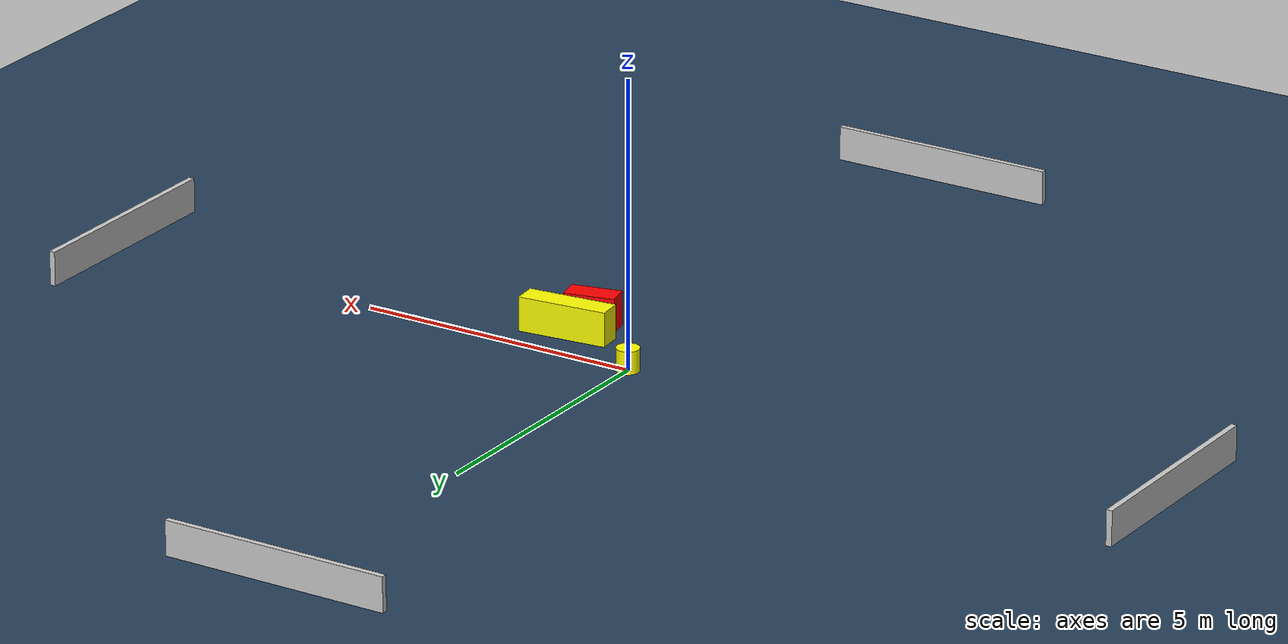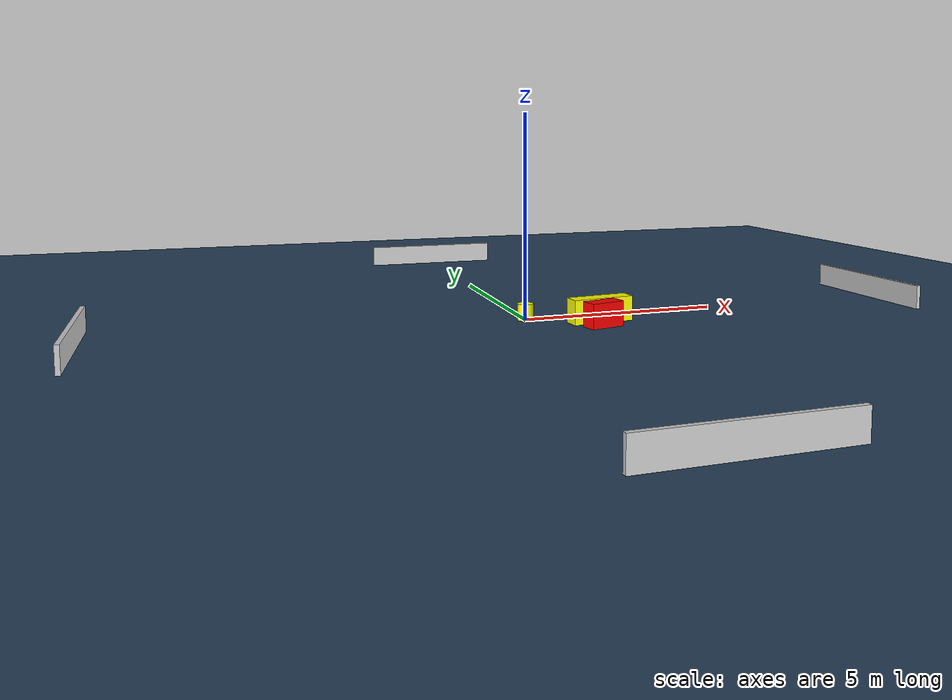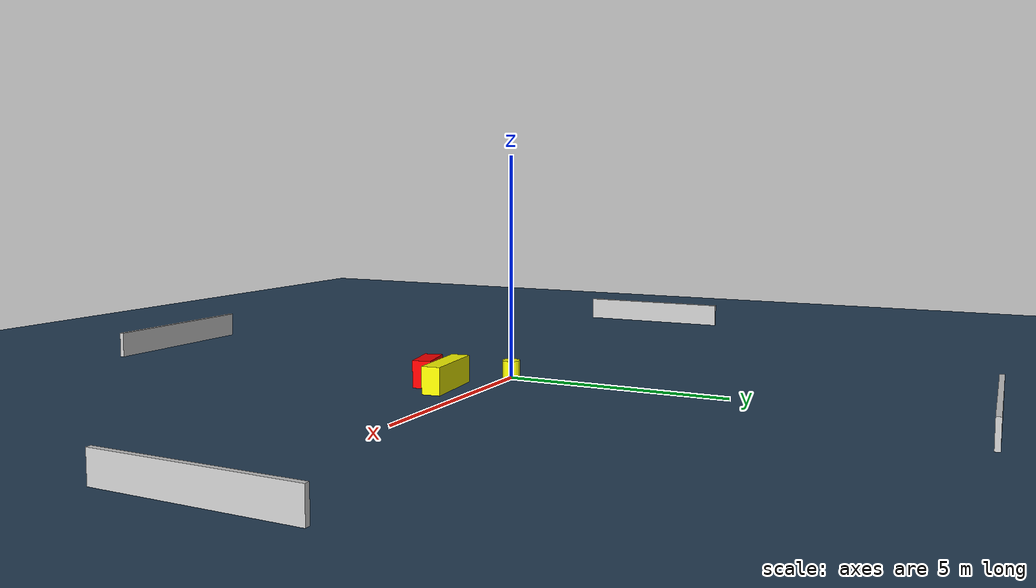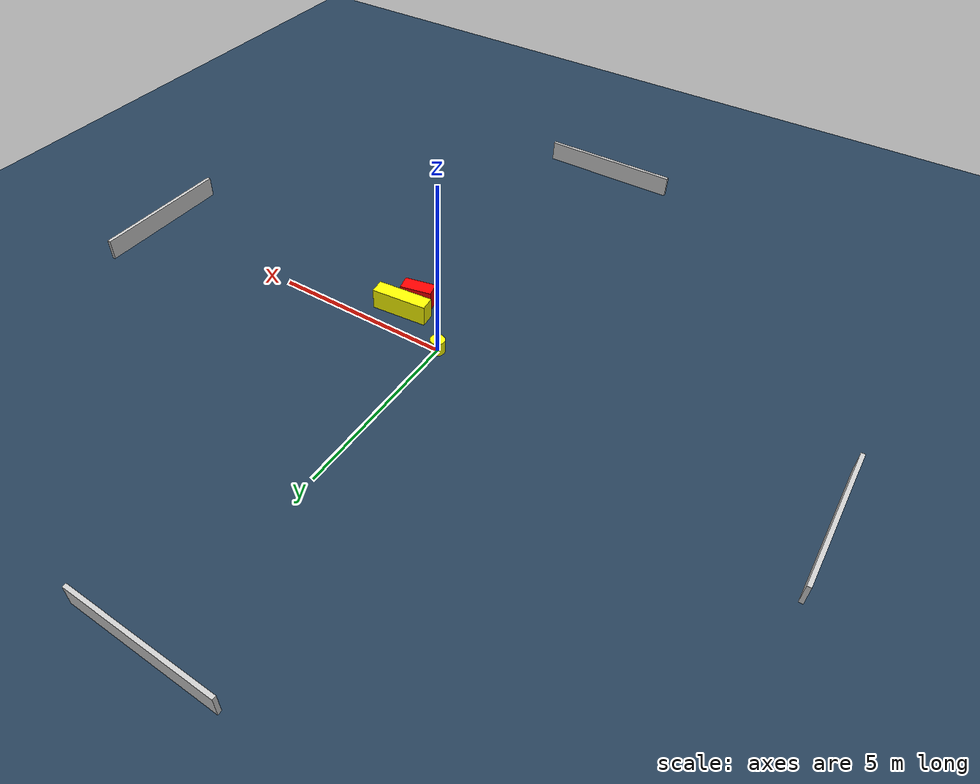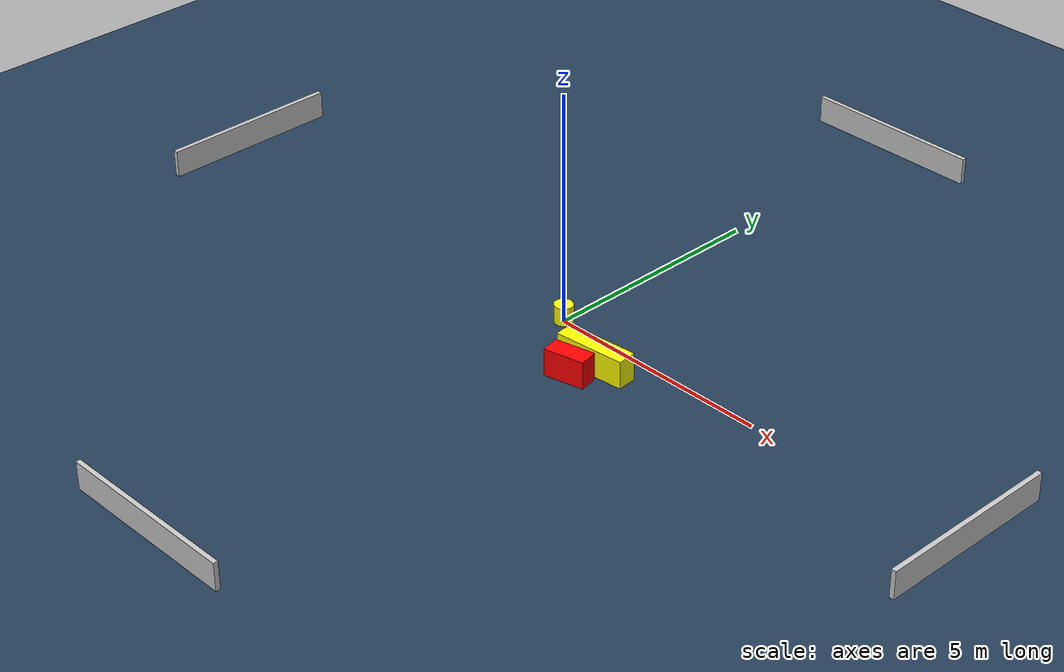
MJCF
<?xml version="1.0" ?>
<mujoco model="generated_environment">
  <option timestep="0.01" integrator="RK4" cone="elliptic"/>
  <default>
    <geom density="1"/>
  </default>
  <asset>
    <texture builtin="gradient" height="3072" name="skybox" rgb1="0.3 0.5 0.7" rgb2="0 0 0" type="skybox" width="512"/>
    <texture builtin="checker" height="300" name="groundplane" rgb1="0.2 0.3 0.4" rgb2="0.1 0.2 0.3" type="2d" width="300"/>
    <material name="groundplane" reflectance="0.2" texrepeat="5 5" texture="groundplane"/>
  </asset>
  <worldbody>
    <light dir="0 0 -1" directional="true" pos="0 0 1.5"/>
    <geom condim="3" friction="0.5 0.005 0.001" material="groundplane" name="floor" pos="0 0 0" size="0 0 0.05" type="plane"/>
    <body name="walls">
      <geom name="wall_1" condim="4" pos="-10.0 0.0 0.3" rgba="0.800000011920929 0.800000011920929 0.800000011920929 1.0" size="0.05 2.0 0.3" type="box"/>
      <geom name="wall_2" condim="4" pos="10.0 0.0 0.3" rgba="0.800000011920929 0.800000011920929 0.800000011920929 1.0" size="0.05 2.0 0.3" type="box"/>
      <geom name="wall_3" condim="4" pos="0.0 -10.0 0.3" rgba="0.800000011920929 0.800000011920929 0.800000011920929 1.0" size="2.0 0.05 0.3" type="box"/>
      <geom name="wall_4" condim="4" pos="0.0 10.0 0.3" rgba="0.800000011920929 0.800000011920929 0.800000011920929 1.0" size="2.0 0.05 0.3" type="box"/>
    </body>
    <body name="robot">
      <joint name="joint_x" type="slide" pos="0 0 0" axis="1 0 0"/>
      <joint name="joint_y" type="slide" pos="0 0 0" axis="0 1 0"/>
      <geom name="robot" type="cylinder" pos="0.0 0.0 0.2" size="0.2 0.2 0.0" mass="5.0" friction="1.0 0.005 0.0001" condim="4" rgba="1.0 1.0 0.0 1.0"/>
    </body>
    <body name="obstacle_1_movable">
      <geom name="obstacle_1_movable" condim="4" pos="1.6470339001584071 -0.7497418838031932 0.3" euler="0 0 95.55303577376787" friction="0.0 0.005 0.001" rgba="1.0 1.0 0.0 1.0" size="0.20806595783950194 0.783027196813946 0.3" type="box" mass="0.1"/>
      <joint type="free"/>
    </body>
    <body name="obstacle_2_static">
      <geom name="obstacle_2_static" condim="4" pos="1.500159075461958 -1.2970515578835276 0.3" euler="0 0 12.847432911074419" friction="0.0 0.005 0.001" rgba="1.0 0.0 0.0 1.0" size="0.4385773211210693 0.20337110213881704 0.3" type="box"/>
    </body>
  </worldbody>
  <actuator>
    <motor name="actuator_x" joint="joint_x" gear="1" ctrlrange="-1 1"/>
    <motor name="actuator_y" joint="joint_y" gear="1" ctrlrange="-1 1"/>
  </actuator>
</mujoco>
